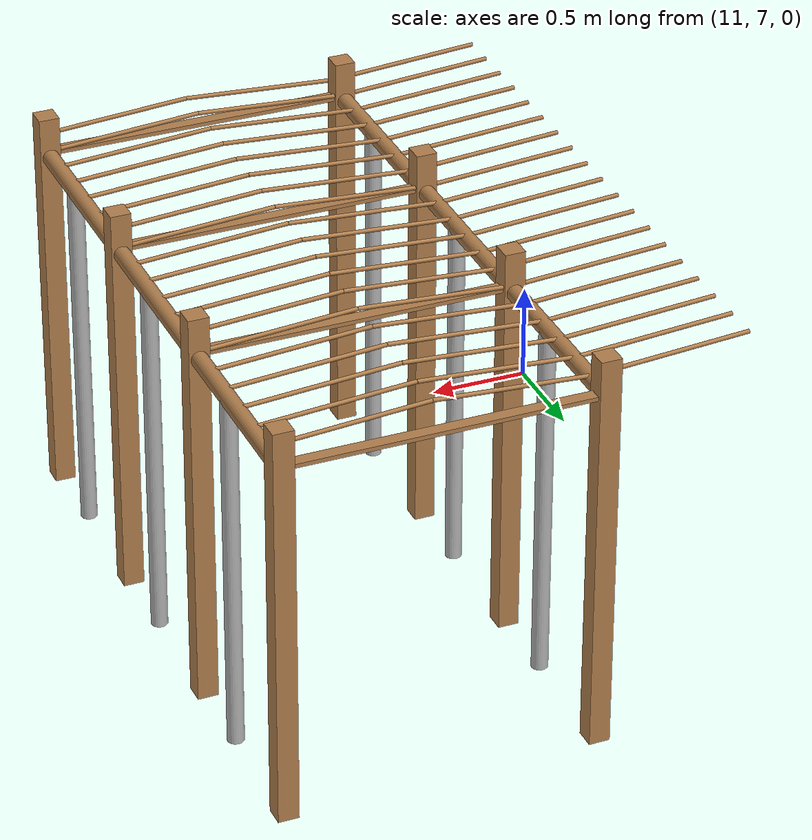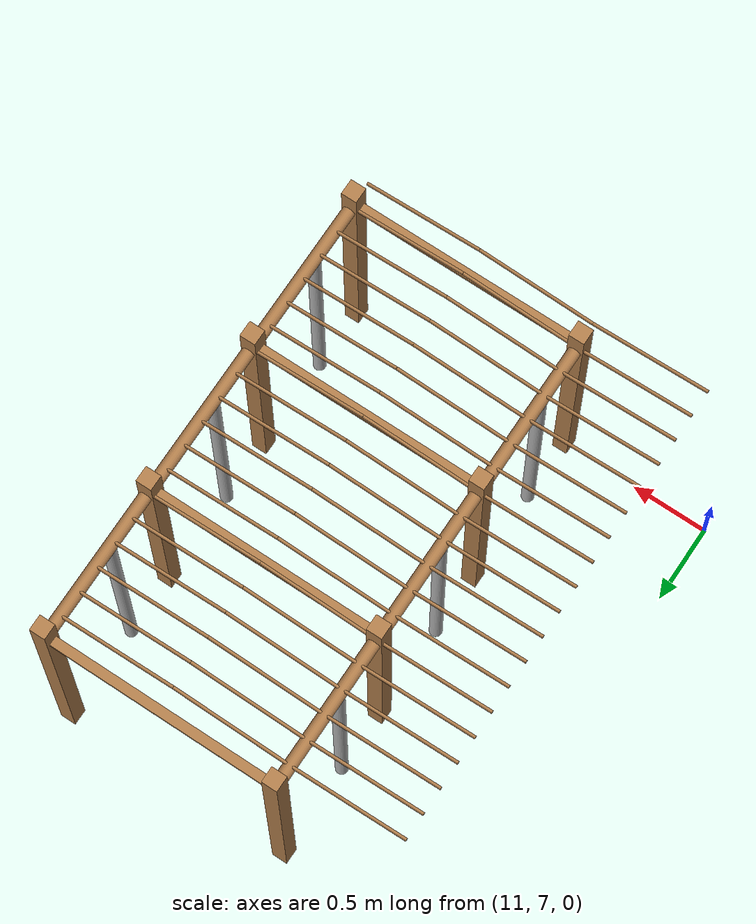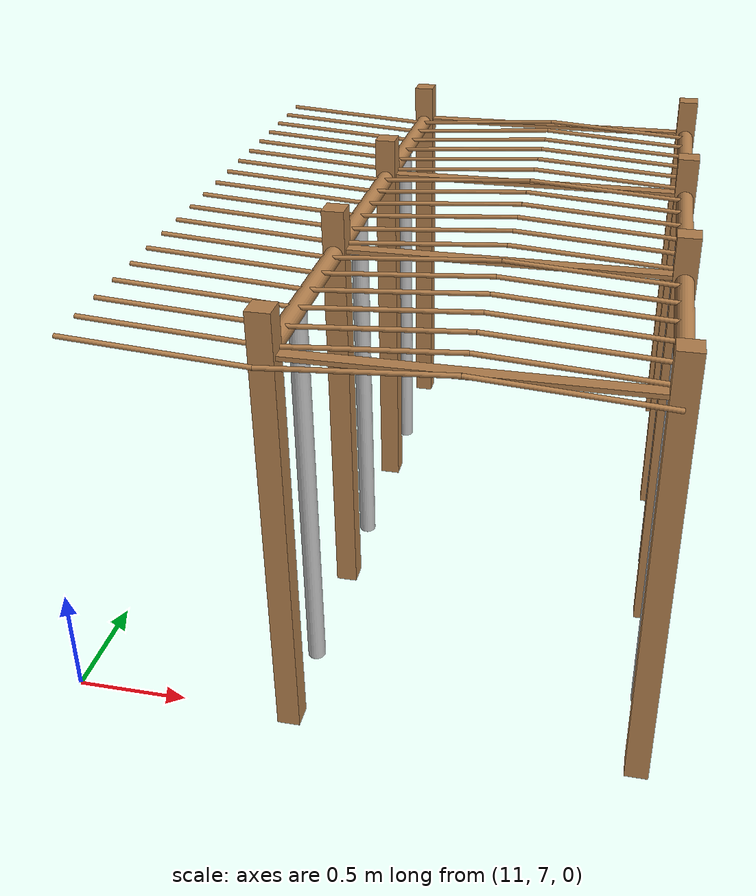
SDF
<sdf version="1.4">
 <model name="pergola">
  <include><name>post_95</name><pose>12.0 7.0 0 0 0 0</pose><uri>model://post</uri></include>
  <include><name>post_96</name><pose>12.0 8.0 0 0 0 0</pose><uri>model://post</uri></include>
  <include><name>post_97</name><pose>12.0 9.0 0 0 0 0</pose><uri>model://post</uri></include>
  <include><name>post_98</name><pose>12.0 10.0 0 0 0 0</pose><uri>model://post</uri></include>
  <include><name>post_106</name><pose>13.5 7.0 0 0 0 0</pose><uri>model://post</uri></include>
  <include><name>post_107</name><pose>13.5 8.0 0 0 0 0</pose><uri>model://post</uri></include>
  <include><name>post_108</name><pose>13.5 9.0 0 0 0 0</pose><uri>model://post</uri></include>
  <include><name>post_109</name><pose>13.5 10.0 0 0 0 0</pose><uri>model://post</uri></include>
  <link name="beam_95">
   <pose>12.75 7.0 1.81 0 0 0</pose>
   <collision name="collision"><geometry><box><size>1.5 0.06 0.02</size></box></geometry></collision>
   <visual name="visual">
    <geometry><box><size>1.5 0.06 0.02</size></box></geometry>
    <material><script><name>Gazebo/Wood</name></script></material>
   </visual>
   <inertial>
    <mass>5</mass>
    <inertia>
     <ixx>0.0016666666666666668</ixx>
     <ixy>0.0</ixy>
     <ixz>0.0</ixz>
     <iyy>0.9390000000000001</iyy>
     <iyz>0.0</iyz>
     <izz>0.9376666666666665</izz>
    </inertia>
   </inertial>
  </link>
  <link name="beam_96">
   <pose>12.75 8.0 1.81 0 0 0</pose>
   <collision name="collision"><geometry><box><size>1.5 0.06 0.02</size></box></geometry></collision>
   <visual name="visual">
    <geometry><box><size>1.5 0.06 0.02</size></box></geometry>
    <material><script><name>Gazebo/Wood</name></script></material>
   </visual>
   <inertial>
    <mass>5</mass>
    <inertia>
     <ixx>0.0016666666666666668</ixx>
     <ixy>0.0</ixy>
     <ixz>0.0</ixz>
     <iyy>0.9390000000000001</iyy>
     <iyz>0.0</iyz>
     <izz>0.9376666666666665</izz>
    </inertia>
   </inertial>
  </link>
  <link name="beam_97">
   <pose>12.75 9.0 1.81 0 0 0</pose>
   <collision name="collision"><geometry><box><size>1.5 0.06 0.02</size></box></geometry></collision>
   <visual name="visual">
    <geometry><box><size>1.5 0.06 0.02</size></box></geometry>
    <material><script><name>Gazebo/Wood</name></script></material>
   </visual>
   <inertial>
    <mass>5</mass>
    <inertia>
     <ixx>0.0016666666666666668</ixx>
     <ixy>0.0</ixy>
     <ixz>0.0</ixz>
     <iyy>0.9390000000000001</iyy>
     <iyz>0.0</iyz>
     <izz>0.9376666666666665</izz>
    </inertia>
   </inertial>
  </link>
  <link name="beam_98">
   <pose>12.75 10.0 1.81 0 0 0</pose>
   <collision name="collision"><geometry><box><size>1.5 0.06 0.02</size></box></geometry></collision>
   <visual name="visual">
    <geometry><box><size>1.5 0.06 0.02</size></box></geometry>
    <material><script><name>Gazebo/Wood</name></script></material>
   </visual>
   <inertial>
    <mass>5</mass>
    <inertia>
     <ixx>0.0016666666666666668</ixx>
     <ixy>0.0</ixy>
     <ixz>0.0</ixz>
     <iyy>0.9390000000000001</iyy>
     <iyz>0.0</iyz>
     <izz>0.9376666666666665</izz>
    </inertia>
   </inertial>
  </link>
  <include><name>tree_87</name><pose>12.0 7.4 0 0 0 0</pose><uri>model://tree_trunk</uri></include>
  <include><name>tree_88</name><pose>12.0 8.4 0 0 0 0</pose><uri>model://tree_trunk</uri></include>
  <include><name>tree_89</name><pose>12.0 9.4 0 0 0 0</pose><uri>model://tree_trunk</uri></include>
  <include><name>tree_97</name><pose>13.5 7.4 0 0 0 0</pose><uri>model://tree_trunk</uri></include>
  <include><name>tree_98</name><pose>13.5 8.4 0 0 0 0</pose><uri>model://tree_trunk</uri></include>
  <include><name>tree_99</name><pose>13.5 9.4 0 0 0 0</pose><uri>model://tree_trunk</uri></include>
  <link name="baseBranch_87">
   <pose>12.0 7.5 1.8 1.5707963267948966 0 0</pose>
   <collision name="collision">
    <geometry><cylinder><radius>0.04</radius><length>0.94</length></cylinder></geometry>
   </collision>
   <visual name="visual">
    <geometry><cylinder><radius>0.04</radius><length>0.94</length></cylinder></geometry>
    <material><script><name>Gazebo/WoodFloor</name></script></material>
   </visual>
   <inertial>
    <mass>10</mass>
    <inertia>
     <ixx>0.7403333333333334</ixx>
     <ixy>0.0</ixy>
     <ixz>0.0</ixz>
     <iyy>0.7403333333333334</iyy>
     <iyz>0.0</iyz>
     <izz>0.008</izz>
    </inertia>
   </inertial>
  </link>
  <link name="baseBranch_88">
   <pose>12.0 8.5 1.8 1.5707963267948966 0 0</pose>
   <collision name="collision">
    <geometry><cylinder><radius>0.04</radius><length>0.94</length></cylinder></geometry>
   </collision>
   <visual name="visual">
    <geometry><cylinder><radius>0.04</radius><length>0.94</length></cylinder></geometry>
    <material><script><name>Gazebo/WoodFloor</name></script></material>
   </visual>
   <inertial>
    <mass>10</mass>
    <inertia>
     <ixx>0.7403333333333334</ixx>
     <ixy>0.0</ixy>
     <ixz>0.0</ixz>
     <iyy>0.7403333333333334</iyy>
     <iyz>0.0</iyz>
     <izz>0.008</izz>
    </inertia>
   </inertial>
  </link>
  <link name="baseBranch_89">
   <pose>12.0 9.5 1.8 1.5707963267948966 0 0</pose>
   <collision name="collision">
    <geometry><cylinder><radius>0.04</radius><length>0.94</length></cylinder></geometry>
   </collision>
   <visual name="visual">
    <geometry><cylinder><radius>0.04</radius><length>0.94</length></cylinder></geometry>
    <material><script><name>Gazebo/WoodFloor</name></script></material>
   </visual>
   <inertial>
    <mass>10</mass>
    <inertia>
     <ixx>0.7403333333333334</ixx>
     <ixy>0.0</ixy>
     <ixz>0.0</ixz>
     <iyy>0.7403333333333334</iyy>
     <iyz>0.0</iyz>
     <izz>0.008</izz>
    </inertia>
   </inertial>
  </link>
  <link name="baseBranch_97">
   <pose>13.5 7.5 1.8 1.5707963267948966 0 0</pose>
   <collision name="collision">
    <geometry><cylinder><radius>0.04</radius><length>0.94</length></cylinder></geometry>
   </collision>
   <visual name="visual">
    <geometry><cylinder><radius>0.04</radius><length>0.94</length></cylinder></geometry>
    <material><script><name>Gazebo/WoodFloor</name></script></material>
   </visual>
   <inertial>
    <mass>10</mass>
    <inertia>
     <ixx>0.7403333333333334</ixx>
     <ixy>0.0</ixy>
     <ixz>0.0</ixz>
     <iyy>0.7403333333333334</iyy>
     <iyz>0.0</iyz>
     <izz>0.008</izz>
    </inertia>
   </inertial>
  </link>
  <link name="baseBranch_98">
   <pose>13.5 8.5 1.8 1.5707963267948966 0 0</pose>
   <collision name="collision">
    <geometry><cylinder><radius>0.04</radius><length>0.94</length></cylinder></geometry>
   </collision>
   <visual name="visual">
    <geometry><cylinder><radius>0.04</radius><length>0.94</length></cylinder></geometry>
    <material><script><name>Gazebo/WoodFloor</name></script></material>
   </visual>
   <inertial>
    <mass>10</mass>
    <inertia>
     <ixx>0.7403333333333334</ixx>
     <ixy>0.0</ixy>
     <ixz>0.0</ixz>
     <iyy>0.7403333333333334</iyy>
     <iyz>0.0</iyz>
     <izz>0.008</izz>
    </inertia>
   </inertial>
  </link>
  <link name="baseBranch_99">
   <pose>13.5 9.5 1.8 1.5707963267948966 0 0</pose>
   <collision name="collision">
    <geometry><cylinder><radius>0.04</radius><length>0.94</length></cylinder></geometry>
   </collision>
   <visual name="visual">
    <geometry><cylinder><radius>0.04</radius><length>0.94</length></cylinder></geometry>
    <material><script><name>Gazebo/WoodFloor</name></script></material>
   </visual>
   <inertial>
    <mass>10</mass>
    <inertia>
     <ixx>0.7403333333333334</ixx>
     <ixy>0.0</ixy>
     <ixz>0.0</ixz>
     <iyy>0.7403333333333334</iyy>
     <iyz>0.0</iyz>
     <izz>0.008</izz>
    </inertia>
   </inertial>
  </link>
  <link name="vine_923">
   <pose>11.625 6.863333333333333 1.85 0 -1.5042281630190728 0</pose>
   <collision name="collision">
    <geometry><cylinder><radius>0.01</radius><length>0.7516648189186453</length></cylinder></geometry>
   </collision>
   <visual name="visual">
    <geometry><cylinder><radius>0.01</radius><length>0.7516648189186453</length></cylinder></geometry>
    <material><script><name>Gazebo/WoodFloor</name></script></material>
   </visual>
   <inertial>
    <mass>5</mass>
    <inertia>
     <ixx>0.23554166666666657</ixx>
     <ixy>0.0</ixy>
     <ixz>0.0</ixz>
     <iyy>0.23554166666666657</iyy>
     <iyz>0.0</iyz>
     <izz>0.00025</izz>
    </inertia>
   </inertial>
  </link>
  <link name="vine_925">
   <pose>11.625 7.03 1.85 0 -1.5042281630190728 0</pose>
   <collision name="collision">
    <geometry><cylinder><radius>0.01</radius><length>0.7516648189186453</length></cylinder></geometry>
   </collision>
   <visual name="visual">
    <geometry><cylinder><radius>0.01</radius><length>0.7516648189186453</length></cylinder></geometry>
    <material><script><name>Gazebo/WoodFloor</name></script></material>
   </visual>
   <inertial>
    <mass>5</mass>
    <inertia>
     <ixx>0.23554166666666657</ixx>
     <ixy>0.0</ixy>
     <ixz>0.0</ixz>
     <iyy>0.23554166666666657</iyy>
     <iyz>0.0</iyz>
     <izz>0.00025</izz>
    </inertia>
   </inertial>
  </link>
  <link name="vine_927">
   <pose>11.625 7.196666666666666 1.85 0 -1.5042281630190728 0</pose>
   <collision name="collision">
    <geometry><cylinder><radius>0.01</radius><length>0.7516648189186453</length></cylinder></geometry>
   </collision>
   <visual name="visual">
    <geometry><cylinder><radius>0.01</radius><length>0.7516648189186453</length></cylinder></geometry>
    <material><script><name>Gazebo/WoodFloor</name></script></material>
   </visual>
   <inertial>
    <mass>5</mass>
    <inertia>
     <ixx>0.23554166666666657</ixx>
     <ixy>0.0</ixy>
     <ixz>0.0</ixz>
     <iyy>0.23554166666666657</iyy>
     <iyz>0.0</iyz>
     <izz>0.00025</izz>
    </inertia>
   </inertial>
  </link>
  <link name="vine_929">
   <pose>11.625 7.363333333333333 1.85 0 -1.5042281630190728 0</pose>
   <collision name="collision">
    <geometry><cylinder><radius>0.01</radius><length>0.7516648189186453</length></cylinder></geometry>
   </collision>
   <visual name="visual">
    <geometry><cylinder><radius>0.01</radius><length>0.7516648189186453</length></cylinder></geometry>
    <material><script><name>Gazebo/WoodFloor</name></script></material>
   </visual>
   <inertial>
    <mass>5</mass>
    <inertia>
     <ixx>0.23554166666666657</ixx>
     <ixy>0.0</ixy>
     <ixz>0.0</ixz>
     <iyy>0.23554166666666657</iyy>
     <iyz>0.0</iyz>
     <izz>0.00025</izz>
    </inertia>
   </inertial>
  </link>
  <link name="vine_931">
   <pose>11.625 7.53 1.85 0 -1.5042281630190728 0</pose>
   <collision name="collision">
    <geometry><cylinder><radius>0.01</radius><length>0.7516648189186453</length></cylinder></geometry>
   </collision>
   <visual name="visual">
    <geometry><cylinder><radius>0.01</radius><length>0.7516648189186453</length></cylinder></geometry>
    <material><script><name>Gazebo/WoodFloor</name></script></material>
   </visual>
   <inertial>
    <mass>5</mass>
    <inertia>
     <ixx>0.23554166666666657</ixx>
     <ixy>0.0</ixy>
     <ixz>0.0</ixz>
     <iyy>0.23554166666666657</iyy>
     <iyz>0.0</iyz>
     <izz>0.00025</izz>
    </inertia>
   </inertial>
  </link>
  <link name="vine_933">
   <pose>11.625 7.696666666666666 1.85 0 -1.5042281630190728 0</pose>
   <collision name="collision">
    <geometry><cylinder><radius>0.01</radius><length>0.7516648189186453</length></cylinder></geometry>
   </collision>
   <visual name="visual">
    <geometry><cylinder><radius>0.01</radius><length>0.7516648189186453</length></cylinder></geometry>
    <material><script><name>Gazebo/WoodFloor</name></script></material>
   </visual>
   <inertial>
    <mass>5</mass>
    <inertia>
     <ixx>0.23554166666666657</ixx>
     <ixy>0.0</ixy>
     <ixz>0.0</ixz>
     <iyy>0.23554166666666657</iyy>
     <iyz>0.0</iyz>
     <izz>0.00025</izz>
    </inertia>
   </inertial>
  </link>
  <link name="vine_935">
   <pose>11.625 7.863333333333333 1.85 0 -1.5042281630190728 0</pose>
   <collision name="collision">
    <geometry><cylinder><radius>0.01</radius><length>0.7516648189186453</length></cylinder></geometry>
   </collision>
   <visual name="visual">
    <geometry><cylinder><radius>0.01</radius><length>0.7516648189186453</length></cylinder></geometry>
    <material><script><name>Gazebo/WoodFloor</name></script></material>
   </visual>
   <inertial>
    <mass>5</mass>
    <inertia>
     <ixx>0.23554166666666657</ixx>
     <ixy>0.0</ixy>
     <ixz>0.0</ixz>
     <iyy>0.23554166666666657</iyy>
     <iyz>0.0</iyz>
     <izz>0.00025</izz>
    </inertia>
   </inertial>
  </link>
  <link name="vine_937">
   <pose>11.625 8.03 1.85 0 -1.5042281630190728 0</pose>
   <collision name="collision">
    <geometry><cylinder><radius>0.01</radius><length>0.7516648189186453</length></cylinder></geometry>
   </collision>
   <visual name="visual">
    <geometry><cylinder><radius>0.01</radius><length>0.7516648189186453</length></cylinder></geometry>
    <material><script><name>Gazebo/WoodFloor</name></script></material>
   </visual>
   <inertial>
    <mass>5</mass>
    <inertia>
     <ixx>0.23554166666666657</ixx>
     <ixy>0.0</ixy>
     <ixz>0.0</ixz>
     <iyy>0.23554166666666657</iyy>
     <iyz>0.0</iyz>
     <izz>0.00025</izz>
    </inertia>
   </inertial>
  </link>
  <link name="vine_939">
   <pose>11.625 8.196666666666665 1.85 0 -1.5042281630190728 0</pose>
   <collision name="collision">
    <geometry><cylinder><radius>0.01</radius><length>0.7516648189186453</length></cylinder></geometry>
   </collision>
   <visual name="visual">
    <geometry><cylinder><radius>0.01</radius><length>0.7516648189186453</length></cylinder></geometry>
    <material><script><name>Gazebo/WoodFloor</name></script></material>
   </visual>
   <inertial>
    <mass>5</mass>
    <inertia>
     <ixx>0.23554166666666657</ixx>
     <ixy>0.0</ixy>
     <ixz>0.0</ixz>
     <iyy>0.23554166666666657</iyy>
     <iyz>0.0</iyz>
     <izz>0.00025</izz>
    </inertia>
   </inertial>
  </link>
  <link name="vine_941">
   <pose>11.625 8.363333333333332 1.85 0 -1.5042281630190728 0</pose>
   <collision name="collision">
    <geometry><cylinder><radius>0.01</radius><length>0.7516648189186453</length></cylinder></geometry>
   </collision>
   <visual name="visual">
    <geometry><cylinder><radius>0.01</radius><length>0.7516648189186453</length></cylinder></geometry>
    <material><script><name>Gazebo/WoodFloor</name></script></material>
   </visual>
   <inertial>
    <mass>5</mass>
    <inertia>
     <ixx>0.23554166666666657</ixx>
     <ixy>0.0</ixy>
     <ixz>0.0</ixz>
     <iyy>0.23554166666666657</iyy>
     <iyz>0.0</iyz>
     <izz>0.00025</izz>
    </inertia>
   </inertial>
  </link>
  <link name="vine_943">
   <pose>11.625 8.53 1.85 0 -1.5042281630190728 0</pose>
   <collision name="collision">
    <geometry><cylinder><radius>0.01</radius><length>0.7516648189186453</length></cylinder></geometry>
   </collision>
   <visual name="visual">
    <geometry><cylinder><radius>0.01</radius><length>0.7516648189186453</length></cylinder></geometry>
    <material><script><name>Gazebo/WoodFloor</name></script></material>
   </visual>
   <inertial>
    <mass>5</mass>
    <inertia>
     <ixx>0.23554166666666657</ixx>
     <ixy>0.0</ixy>
     <ixz>0.0</ixz>
     <iyy>0.23554166666666657</iyy>
     <iyz>0.0</iyz>
     <izz>0.00025</izz>
    </inertia>
   </inertial>
  </link>
  <link name="vine_945">
   <pose>11.625 8.696666666666665 1.85 0 -1.5042281630190728 0</pose>
   <collision name="collision">
    <geometry><cylinder><radius>0.01</radius><length>0.7516648189186453</length></cylinder></geometry>
   </collision>
   <visual name="visual">
    <geometry><cylinder><radius>0.01</radius><length>0.7516648189186453</length></cylinder></geometry>
    <material><script><name>Gazebo/WoodFloor</name></script></material>
   </visual>
   <inertial>
    <mass>5</mass>
    <inertia>
     <ixx>0.23554166666666657</ixx>
     <ixy>0.0</ixy>
     <ixz>0.0</ixz>
     <iyy>0.23554166666666657</iyy>
     <iyz>0.0</iyz>
     <izz>0.00025</izz>
    </inertia>
   </inertial>
  </link>
  <link name="vine_947">
   <pose>11.625 8.863333333333332 1.85 0 -1.5042281630190728 0</pose>
   <collision name="collision">
    <geometry><cylinder><radius>0.01</radius><length>0.7516648189186453</length></cylinder></geometry>
   </collision>
   <visual name="visual">
    <geometry><cylinder><radius>0.01</radius><length>0.7516648189186453</length></cylinder></geometry>
    <material><script><name>Gazebo/WoodFloor</name></script></material>
   </visual>
   <inertial>
    <mass>5</mass>
    <inertia>
     <ixx>0.23554166666666657</ixx>
     <ixy>0.0</ixy>
     <ixz>0.0</ixz>
     <iyy>0.23554166666666657</iyy>
     <iyz>0.0</iyz>
     <izz>0.00025</izz>
    </inertia>
   </inertial>
  </link>
  <link name="vine_949">
   <pose>11.625 9.03 1.85 0 -1.5042281630190728 0</pose>
   <collision name="collision">
    <geometry><cylinder><radius>0.01</radius><length>0.7516648189186453</length></cylinder></geometry>
   </collision>
   <visual name="visual">
    <geometry><cylinder><radius>0.01</radius><length>0.7516648189186453</length></cylinder></geometry>
    <material><script><name>Gazebo/WoodFloor</name></script></material>
   </visual>
   <inertial>
    <mass>5</mass>
    <inertia>
     <ixx>0.23554166666666657</ixx>
     <ixy>0.0</ixy>
     <ixz>0.0</ixz>
     <iyy>0.23554166666666657</iyy>
     <iyz>0.0</iyz>
     <izz>0.00025</izz>
    </inertia>
   </inertial>
  </link>
  <link name="vine_951">
   <pose>11.625 9.196666666666665 1.85 0 -1.5042281630190728 0</pose>
   <collision name="collision">
    <geometry><cylinder><radius>0.01</radius><length>0.7516648189186453</length></cylinder></geometry>
   </collision>
   <visual name="visual">
    <geometry><cylinder><radius>0.01</radius><length>0.7516648189186453</length></cylinder></geometry>
    <material><script><name>Gazebo/WoodFloor</name></script></material>
   </visual>
   <inertial>
    <mass>5</mass>
    <inertia>
     <ixx>0.23554166666666657</ixx>
     <ixy>0.0</ixy>
     <ixz>0.0</ixz>
     <iyy>0.23554166666666657</iyy>
     <iyz>0.0</iyz>
     <izz>0.00025</izz>
    </inertia>
   </inertial>
  </link>
  <link name="vine_953">
   <pose>11.625 9.363333333333332 1.85 0 -1.5042281630190728 0</pose>
   <collision name="collision">
    <geometry><cylinder><radius>0.01</radius><length>0.7516648189186453</length></cylinder></geometry>
   </collision>
   <visual name="visual">
    <geometry><cylinder><radius>0.01</radius><length>0.7516648189186453</length></cylinder></geometry>
    <material><script><name>Gazebo/WoodFloor</name></script></material>
   </visual>
   <inertial>
    <mass>5</mass>
    <inertia>
     <ixx>0.23554166666666657</ixx>
     <ixy>0.0</ixy>
     <ixz>0.0</ixz>
     <iyy>0.23554166666666657</iyy>
     <iyz>0.0</iyz>
     <izz>0.00025</izz>
    </inertia>
   </inertial>
  </link>
  <link name="vine_955">
   <pose>11.625 9.53 1.85 0 -1.5042281630190728 0</pose>
   <collision name="collision">
    <geometry><cylinder><radius>0.01</radius><length>0.7516648189186453</length></cylinder></geometry>
   </collision>
   <visual name="visual">
    <geometry><cylinder><radius>0.01</radius><length>0.7516648189186453</length></cylinder></geometry>
    <material><script><name>Gazebo/WoodFloor</name></script></material>
   </visual>
   <inertial>
    <mass>5</mass>
    <inertia>
     <ixx>0.23554166666666657</ixx>
     <ixy>0.0</ixy>
     <ixz>0.0</ixz>
     <iyy>0.23554166666666657</iyy>
     <iyz>0.0</iyz>
     <izz>0.00025</izz>
    </inertia>
   </inertial>
  </link>
  <link name="vine_957">
   <pose>11.625 9.696666666666665 1.85 0 -1.5042281630190728 0</pose>
   <collision name="collision">
    <geometry><cylinder><radius>0.01</radius><length>0.7516648189186453</length></cylinder></geometry>
   </collision>
   <visual name="visual">
    <geometry><cylinder><radius>0.01</radius><length>0.7516648189186453</length></cylinder></geometry>
    <material><script><name>Gazebo/WoodFloor</name></script></material>
   </visual>
   <inertial>
    <mass>5</mass>
    <inertia>
     <ixx>0.23554166666666657</ixx>
     <ixy>0.0</ixy>
     <ixz>0.0</ixz>
     <iyy>0.23554166666666657</iyy>
     <iyz>0.0</iyz>
     <izz>0.00025</izz>
    </inertia>
   </inertial>
  </link>
  <link name="vine_959">
   <pose>11.625 9.863333333333332 1.85 0 -1.5042281630190728 0</pose>
   <collision name="collision">
    <geometry><cylinder><radius>0.01</radius><length>0.7516648189186453</length></cylinder></geometry>
   </collision>
   <visual name="visual">
    <geometry><cylinder><radius>0.01</radius><length>0.7516648189186453</length></cylinder></geometry>
    <material><script><name>Gazebo/WoodFloor</name></script></material>
   </visual>
   <inertial>
    <mass>5</mass>
    <inertia>
     <ixx>0.23554166666666657</ixx>
     <ixy>0.0</ixy>
     <ixz>0.0</ixz>
     <iyy>0.23554166666666657</iyy>
     <iyz>0.0</iyz>
     <izz>0.00025</izz>
    </inertia>
   </inertial>
  </link>
  <link name="vine_1042">
   <pose>12.375 6.863333333333333 1.85 0 1.5042281630190728 0</pose>
   <collision name="collision">
    <geometry><cylinder><radius>0.01</radius><length>0.7516648189186453</length></cylinder></geometry>
   </collision>
   <visual name="visual">
    <geometry><cylinder><radius>0.01</radius><length>0.7516648189186453</length></cylinder></geometry>
    <material><script><name>Gazebo/WoodFloor</name></script></material>
   </visual>
   <inertial>
    <mass>5</mass>
    <inertia>
     <ixx>0.23554166666666657</ixx>
     <ixy>0.0</ixy>
     <ixz>0.0</ixz>
     <iyy>0.23554166666666657</iyy>
     <iyz>0.0</iyz>
     <izz>0.00025</izz>
    </inertia>
   </inertial>
  </link>
  <link name="vine_1043">
   <pose>13.125 6.863333333333333 1.85 0 -1.5042281630190728 0</pose>
   <collision name="collision">
    <geometry><cylinder><radius>0.01</radius><length>0.7516648189186453</length></cylinder></geometry>
   </collision>
   <visual name="visual">
    <geometry><cylinder><radius>0.01</radius><length>0.7516648189186453</length></cylinder></geometry>
    <material><script><name>Gazebo/WoodFloor</name></script></material>
   </visual>
   <inertial>
    <mass>5</mass>
    <inertia>
     <ixx>0.23554166666666657</ixx>
     <ixy>0.0</ixy>
     <ixz>0.0</ixz>
     <iyy>0.23554166666666657</iyy>
     <iyz>0.0</iyz>
     <izz>0.00025</izz>
    </inertia>
   </inertial>
  </link>
  <link name="vine_1044">
   <pose>12.375 7.03 1.85 0 1.5042281630190728 0</pose>
   <collision name="collision">
    <geometry><cylinder><radius>0.01</radius><length>0.7516648189186453</length></cylinder></geometry>
   </collision>
   <visual name="visual">
    <geometry><cylinder><radius>0.01</radius><length>0.7516648189186453</length></cylinder></geometry>
    <material><script><name>Gazebo/WoodFloor</name></script></material>
   </visual>
   <inertial>
    <mass>5</mass>
    <inertia>
     <ixx>0.23554166666666657</ixx>
     <ixy>0.0</ixy>
     <ixz>0.0</ixz>
     <iyy>0.23554166666666657</iyy>
     <iyz>0.0</iyz>
     <izz>0.00025</izz>
    </inertia>
   </inertial>
  </link>
  <link name="vine_1045">
   <pose>13.125 7.03 1.85 0 -1.5042281630190728 0</pose>
   <collision name="collision">
    <geometry><cylinder><radius>0.01</radius><length>0.7516648189186453</length></cylinder></geometry>
   </collision>
   <visual name="visual">
    <geometry><cylinder><radius>0.01</radius><length>0.7516648189186453</length></cylinder></geometry>
    <material><script><name>Gazebo/WoodFloor</name></script></material>
   </visual>
   <inertial>
    <mass>5</mass>
    <inertia>
     <ixx>0.23554166666666657</ixx>
     <ixy>0.0</ixy>
     <ixz>0.0</ixz>
     <iyy>0.23554166666666657</iyy>
     <iyz>0.0</iyz>
     <izz>0.00025</izz>
    </inertia>
   </inertial>
  </link>
  <link name="vine_1046">
   <pose>12.375 7.196666666666666 1.85 0 1.5042281630190728 0</pose>
   <collision name="collision">
    <geometry><cylinder><radius>0.01</radius><length>0.7516648189186453</length></cylinder></geometry>
   </collision>
   <visual name="visual">
    <geometry><cylinder><radius>0.01</radius><length>0.7516648189186453</length></cylinder></geometry>
    <material><script><name>Gazebo/WoodFloor</name></script></material>
   </visual>
   <inertial>
    <mass>5</mass>
    <inertia>
     <ixx>0.23554166666666657</ixx>
     <ixy>0.0</ixy>
     <ixz>0.0</ixz>
     <iyy>0.23554166666666657</iyy>
     <iyz>0.0</iyz>
     <izz>0.00025</izz>
    </inertia>
   </inertial>
  </link>
  <link name="vine_1047">
   <pose>13.125 7.196666666666666 1.85 0 -1.5042281630190728 0</pose>
   <collision name="collision">
    <geometry><cylinder><radius>0.01</radius><length>0.7516648189186453</length></cylinder></geometry>
   </collision>
   <visual name="visual">
    <geometry><cylinder><radius>0.01</radius><length>0.7516648189186453</length></cylinder></geometry>
    <material><script><name>Gazebo/WoodFloor</name></script></material>
   </visual>
   <inertial>
    <mass>5</mass>
    <inertia>
     <ixx>0.23554166666666657</ixx>
     <ixy>0.0</ixy>
     <ixz>0.0</ixz>
     <iyy>0.23554166666666657</iyy>
     <iyz>0.0</iyz>
     <izz>0.00025</izz>
    </inertia>
   </inertial>
  </link>
  <link name="vine_1048">
   <pose>12.375 7.363333333333333 1.85 0 1.5042281630190728 0</pose>
   <collision name="collision">
    <geometry><cylinder><radius>0.01</radius><length>0.7516648189186453</length></cylinder></geometry>
   </collision>
   <visual name="visual">
    <geometry><cylinder><radius>0.01</radius><length>0.7516648189186453</length></cylinder></geometry>
    <material><script><name>Gazebo/WoodFloor</name></script></material>
   </visual>
   <inertial>
    <mass>5</mass>
    <inertia>
     <ixx>0.23554166666666657</ixx>
     <ixy>0.0</ixy>
     <ixz>0.0</ixz>
     <iyy>0.23554166666666657</iyy>
     <iyz>0.0</iyz>
     <izz>0.00025</izz>
    </inertia>
   </inertial>
  </link>
  <link name="vine_1049">
   <pose>13.125 7.363333333333333 1.85 0 -1.5042281630190728 0</pose>
   <collision name="collision">
    <geometry><cylinder><radius>0.01</radius><length>0.7516648189186453</length></cylinder></geometry>
   </collision>
   <visual name="visual">
    <geometry><cylinder><radius>0.01</radius><length>0.7516648189186453</length></cylinder></geometry>
    <material><script><name>Gazebo/WoodFloor</name></script></material>
   </visual>
   <inertial>
    <mass>5</mass>
    <inertia>
     <ixx>0.23554166666666657</ixx>
     <ixy>0.0</ixy>
     <ixz>0.0</ixz>
     <iyy>0.23554166666666657</iyy>
     <iyz>0.0</iyz>
     <izz>0.00025</izz>
    </inertia>
   </inertial>
  </link>
  <link name="vine_1050">
   <pose>12.375 7.53 1.85 0 1.5042281630190728 0</pose>
   <collision name="collision">
    <geometry><cylinder><radius>0.01</radius><length>0.7516648189186453</length></cylinder></geometry>
   </collision>
   <visual name="visual">
    <geometry><cylinder><radius>0.01</radius><length>0.7516648189186453</length></cylinder></geometry>
    <material><script><name>Gazebo/WoodFloor</name></script></material>
   </visual>
   <inertial>
    <mass>5</mass>
    <inertia>
     <ixx>0.23554166666666657</ixx>
     <ixy>0.0</ixy>
     <ixz>0.0</ixz>
     <iyy>0.23554166666666657</iyy>
     <iyz>0.0</iyz>
     <izz>0.00025</izz>
    </inertia>
   </inertial>
  </link>
  <link name="vine_1051">
   <pose>13.125 7.53 1.85 0 -1.5042281630190728 0</pose>
   <collision name="collision">
    <geometry><cylinder><radius>0.01</radius><length>0.7516648189186453</length></cylinder></geometry>
   </collision>
   <visual name="visual">
    <geometry><cylinder><radius>0.01</radius><length>0.7516648189186453</length></cylinder></geometry>
    <material><script><name>Gazebo/WoodFloor</name></script></material>
   </visual>
   <inertial>
    <mass>5</mass>
    <inertia>
     <ixx>0.23554166666666657</ixx>
     <ixy>0.0</ixy>
     <ixz>0.0</ixz>
     <iyy>0.23554166666666657</iyy>
     <iyz>0.0</iyz>
     <izz>0.00025</izz>
    </inertia>
   </inertial>
  </link>
  <link name="vine_1052">
   <pose>12.375 7.696666666666666 1.85 0 1.5042281630190728 0</pose>
   <collision name="collision">
    <geometry><cylinder><radius>0.01</radius><length>0.7516648189186453</length></cylinder></geometry>
   </collision>
   <visual name="visual">
    <geometry><cylinder><radius>0.01</radius><length>0.7516648189186453</length></cylinder></geometry>
    <material><script><name>Gazebo/WoodFloor</name></script></material>
   </visual>
   <inertial>
    <mass>5</mass>
    <inertia>
     <ixx>0.23554166666666657</ixx>
     <ixy>0.0</ixy>
     <ixz>0.0</ixz>
     <iyy>0.23554166666666657</iyy>
     <iyz>0.0</iyz>
     <izz>0.00025</izz>
    </inertia>
   </inertial>
  </link>
  <link name="vine_1053">
   <pose>13.125 7.696666666666666 1.85 0 -1.5042281630190728 0</pose>
   <collision name="collision">
    <geometry><cylinder><radius>0.01</radius><length>0.7516648189186453</length></cylinder></geometry>
   </collision>
   <visual name="visual">
    <geometry><cylinder><radius>0.01</radius><length>0.7516648189186453</length></cylinder></geometry>
    <material><script><name>Gazebo/WoodFloor</name></script></material>
   </visual>
   <inertial>
    <mass>5</mass>
    <inertia>
     <ixx>0.23554166666666657</ixx>
     <ixy>0.0</ixy>
     <ixz>0.0</ixz>
     <iyy>0.23554166666666657</iyy>
     <iyz>0.0</iyz>
     <izz>0.00025</izz>
    </inertia>
   </inertial>
  </link>
  <link name="vine_1054">
   <pose>12.375 7.863333333333333 1.85 0 1.5042281630190728 0</pose>
   <collision name="collision">
    <geometry><cylinder><radius>0.01</radius><length>0.7516648189186453</length></cylinder></geometry>
   </collision>
   <visual name="visual">
    <geometry><cylinder><radius>0.01</radius><length>0.7516648189186453</length></cylinder></geometry>
    <material><script><name>Gazebo/WoodFloor</name></script></material>
   </visual>
   <inertial>
    <mass>5</mass>
    <inertia>
     <ixx>0.23554166666666657</ixx>
     <ixy>0.0</ixy>
     <ixz>0.0</ixz>
     <iyy>0.23554166666666657</iyy>
     <iyz>0.0</iyz>
     <izz>0.00025</izz>
    </inertia>
   </inertial>
  </link>
  <link name="vine_1055">
   <pose>13.125 7.863333333333333 1.85 0 -1.5042281630190728 0</pose>
   <collision name="collision">
    <geometry><cylinder><radius>0.01</radius><length>0.7516648189186453</length></cylinder></geometry>
   </collision>
   <visual name="visual">
    <geometry><cylinder><radius>0.01</radius><length>0.7516648189186453</length></cylinder></geometry>
    <material><script><name>Gazebo/WoodFloor</name></script></material>
   </visual>
   <inertial>
    <mass>5</mass>
    <inertia>
     <ixx>0.23554166666666657</ixx>
     <ixy>0.0</ixy>
     <ixz>0.0</ixz>
     <iyy>0.23554166666666657</iyy>
     <iyz>0.0</iyz>
     <izz>0.00025</izz>
    </inertia>
   </inertial>
  </link>
  <link name="vine_1056">
   <pose>12.375 8.03 1.85 0 1.5042281630190728 0</pose>
   <collision name="collision">
    <geometry><cylinder><radius>0.01</radius><length>0.7516648189186453</length></cylinder></geometry>
   </collision>
   <visual name="visual">
    <geometry><cylinder><radius>0.01</radius><length>0.7516648189186453</length></cylinder></geometry>
    <material><script><name>Gazebo/WoodFloor</name></script></material>
   </visual>
   <inertial>
    <mass>5</mass>
    <inertia>
     <ixx>0.23554166666666657</ixx>
     <ixy>0.0</ixy>
     <ixz>0.0</ixz>
     <iyy>0.23554166666666657</iyy>
     <iyz>0.0</iyz>
     <izz>0.00025</izz>
    </inertia>
   </inertial>
  </link>
  <link name="vine_1057">
   <pose>13.125 8.03 1.85 0 -1.5042281630190728 0</pose>
   <collision name="collision">
    <geometry><cylinder><radius>0.01</radius><length>0.7516648189186453</length></cylinder></geometry>
   </collision>
   <visual name="visual">
    <geometry><cylinder><radius>0.01</radius><length>0.7516648189186453</length></cylinder></geometry>
    <material><script><name>Gazebo/WoodFloor</name></script></material>
   </visual>
   <inertial>
    <mass>5</mass>
    <inertia>
     <ixx>0.23554166666666657</ixx>
     <ixy>0.0</ixy>
     <ixz>0.0</ixz>
     <iyy>0.23554166666666657</iyy>
     <iyz>0.0</iyz>
     <izz>0.00025</izz>
    </inertia>
   </inertial>
  </link>
  <link name="vine_1058">
   <pose>12.375 8.196666666666665 1.85 0 1.5042281630190728 0</pose>
   <collision name="collision">
    <geometry><cylinder><radius>0.01</radius><length>0.7516648189186453</length></cylinder></geometry>
   </collision>
   <visual name="visual">
    <geometry><cylinder><radius>0.01</radius><length>0.7516648189186453</length></cylinder></geometry>
    <material><script><name>Gazebo/WoodFloor</name></script></material>
   </visual>
   <inertial>
    <mass>5</mass>
    <inertia>
     <ixx>0.23554166666666657</ixx>
     <ixy>0.0</ixy>
     <ixz>0.0</ixz>
     <iyy>0.23554166666666657</iyy>
     <iyz>0.0</iyz>
     <izz>0.00025</izz>
    </inertia>
   </inertial>
  </link>
  <link name="vine_1059">
   <pose>13.125 8.196666666666665 1.85 0 -1.5042281630190728 0</pose>
   <collision name="collision">
    <geometry><cylinder><radius>0.01</radius><length>0.7516648189186453</length></cylinder></geometry>
   </collision>
   <visual name="visual">
    <geometry><cylinder><radius>0.01</radius><length>0.7516648189186453</length></cylinder></geometry>
    <material><script><name>Gazebo/WoodFloor</name></script></material>
   </visual>
   <inertial>
    <mass>5</mass>
    <inertia>
     <ixx>0.23554166666666657</ixx>
     <ixy>0.0</ixy>
     <ixz>0.0</ixz>
     <iyy>0.23554166666666657</iyy>
     <iyz>0.0</iyz>
     <izz>0.00025</izz>
    </inertia>
   </inertial>
  </link>
  <link name="vine_1060">
   <pose>12.375 8.363333333333332 1.85 0 1.5042281630190728 0</pose>
   <collision name="collision">
    <geometry><cylinder><radius>0.01</radius><length>0.7516648189186453</length></cylinder></geometry>
   </collision>
   <visual name="visual">
    <geometry><cylinder><radius>0.01</radius><length>0.7516648189186453</length></cylinder></geometry>
    <material><script><name>Gazebo/WoodFloor</name></script></material>
   </visual>
   <inertial>
    <mass>5</mass>
    <inertia>
     <ixx>0.23554166666666657</ixx>
     <ixy>0.0</ixy>
     <ixz>0.0</ixz>
     <iyy>0.23554166666666657</iyy>
     <iyz>0.0</iyz>
     <izz>0.00025</izz>
    </inertia>
   </inertial>
  </link>
  <link name="vine_1061">
   <pose>13.125 8.363333333333332 1.85 0 -1.5042281630190728 0</pose>
   <collision name="collision">
    <geometry><cylinder><radius>0.01</radius><length>0.7516648189186453</length></cylinder></geometry>
   </collision>
   <visual name="visual">
    <geometry><cylinder><radius>0.01</radius><length>0.7516648189186453</length></cylinder></geometry>
    <material><script><name>Gazebo/WoodFloor</name></script></material>
   </visual>
   <inertial>
    <mass>5</mass>
    <inertia>
     <ixx>0.23554166666666657</ixx>
     <ixy>0.0</ixy>
     <ixz>0.0</ixz>
     <iyy>0.23554166666666657</iyy>
     <iyz>0.0</iyz>
     <izz>0.00025</izz>
    </inertia>
   </inertial>
  </link>
  <link name="vine_1062">
   <pose>12.375 8.53 1.85 0 1.5042281630190728 0</pose>
   <collision name="collision">
    <geometry><cylinder><radius>0.01</radius><length>0.7516648189186453</length></cylinder></geometry>
   </collision>
   <visual name="visual">
    <geometry><cylinder><radius>0.01</radius><length>0.7516648189186453</length></cylinder></geometry>
    <material><script><name>Gazebo/WoodFloor</name></script></material>
   </visual>
   <inertial>
    <mass>5</mass>
    <inertia>
     <ixx>0.23554166666666657</ixx>
     <ixy>0.0</ixy>
     <ixz>0.0</ixz>
     <iyy>0.23554166666666657</iyy>
     <iyz>0.0</iyz>
     <izz>0.00025</izz>
    </inertia>
   </inertial>
  </link>
  <link name="vine_1063">
   <pose>13.125 8.53 1.85 0 -1.5042281630190728 0</pose>
   <collision name="collision">
    <geometry><cylinder><radius>0.01</radius><length>0.7516648189186453</length></cylinder></geometry>
   </collision>
   <visual name="visual">
    <geometry><cylinder><radius>0.01</radius><length>0.7516648189186453</length></cylinder></geometry>
    <material><script><name>Gazebo/WoodFloor</name></script></material>
   </visual>
   <inertial>
    <mass>5</mass>
    <inertia>
     <ixx>0.23554166666666657</ixx>
     <ixy>0.0</ixy>
     <ixz>0.0</ixz>
     <iyy>0.23554166666666657</iyy>
     <iyz>0.0</iyz>
     <izz>0.00025</izz>
    </inertia>
   </inertial>
  </link>
  <link name="vine_1064">
   <pose>12.375 8.696666666666665 1.85 0 1.5042281630190728 0</pose>
   <collision name="collision">
    <geometry><cylinder><radius>0.01</radius><length>0.7516648189186453</length></cylinder></geometry>
   </collision>
   <visual name="visual">
    <geometry><cylinder><radius>0.01</radius><length>0.7516648189186453</length></cylinder></geometry>
    <material><script><name>Gazebo/WoodFloor</name></script></material>
   </visual>
   <inertial>
    <mass>5</mass>
    <inertia>
     <ixx>0.23554166666666657</ixx>
     <ixy>0.0</ixy>
     <ixz>0.0</ixz>
     <iyy>0.23554166666666657</iyy>
     <iyz>0.0</iyz>
     <izz>0.00025</izz>
    </inertia>
   </inertial>
  </link>
  <link name="vine_1065">
   <pose>13.125 8.696666666666665 1.85 0 -1.5042281630190728 0</pose>
   <collision name="collision">
    <geometry><cylinder><radius>0.01</radius><length>0.7516648189186453</length></cylinder></geometry>
   </collision>
   <visual name="visual">
    <geometry><cylinder><radius>0.01</radius><length>0.7516648189186453</length></cylinder></geometry>
    <material><script><name>Gazebo/WoodFloor</name></script></material>
   </visual>
   <inertial>
    <mass>5</mass>
    <inertia>
     <ixx>0.23554166666666657</ixx>
     <ixy>0.0</ixy>
     <ixz>0.0</ixz>
     <iyy>0.23554166666666657</iyy>
     <iyz>0.0</iyz>
     <izz>0.00025</izz>
    </inertia>
   </inertial>
  </link>
  <link name="vine_1066">
   <pose>12.375 8.863333333333332 1.85 0 1.5042281630190728 0</pose>
   <collision name="collision">
    <geometry><cylinder><radius>0.01</radius><length>0.7516648189186453</length></cylinder></geometry>
   </collision>
   <visual name="visual">
    <geometry><cylinder><radius>0.01</radius><length>0.7516648189186453</length></cylinder></geometry>
    <material><script><name>Gazebo/WoodFloor</name></script></material>
   </visual>
   <inertial>
    <mass>5</mass>
    <inertia>
     <ixx>0.23554166666666657</ixx>
     <ixy>0.0</ixy>
     <ixz>0.0</ixz>
     <iyy>0.23554166666666657</iyy>
     <iyz>0.0</iyz>
     <izz>0.00025</izz>
    </inertia>
   </inertial>
  </link>
  <link name="vine_1067">
   <pose>13.125 8.863333333333332 1.85 0 -1.5042281630190728 0</pose>
   <collision name="collision">
    <geometry><cylinder><radius>0.01</radius><length>0.7516648189186453</length></cylinder></geometry>
   </collision>
   <visual name="visual">
    <geometry><cylinder><radius>0.01</radius><length>0.7516648189186453</length></cylinder></geometry>
    <material><script><name>Gazebo/WoodFloor</name></script></material>
   </visual>
   <inertial>
    <mass>5</mass>
    <inertia>
     <ixx>0.23554166666666657</ixx>
     <ixy>0.0</ixy>
     <ixz>0.0</ixz>
     <iyy>0.23554166666666657</iyy>
     <iyz>0.0</iyz>
     <izz>0.00025</izz>
    </inertia>
   </inertial>
  </link>
  <link name="vine_1068">
   <pose>12.375 9.03 1.85 0 1.5042281630190728 0</pose>
   <collision name="collision">
    <geometry><cylinder><radius>0.01</radius><length>0.7516648189186453</length></cylinder></geometry>
   </collision>
   <visual name="visual">
    <geometry><cylinder><radius>0.01</radius><length>0.7516648189186453</length></cylinder></geometry>
    <material><script><name>Gazebo/WoodFloor</name></script></material>
   </visual>
   <inertial>
    <mass>5</mass>
    <inertia>
     <ixx>0.23554166666666657</ixx>
     <ixy>0.0</ixy>
     <ixz>0.0</ixz>
     <iyy>0.23554166666666657</iyy>
     <iyz>0.0</iyz>
     <izz>0.00025</izz>
    </inertia>
   </inertial>
  </link>
  <link name="vine_1069">
   <pose>13.125 9.03 1.85 0 -1.5042281630190728 0</pose>
   <collision name="collision">
    <geometry><cylinder><radius>0.01</radius><length>0.7516648189186453</length></cylinder></geometry>
   </collision>
   <visual name="visual">
    <geometry><cylinder><radius>0.01</radius><length>0.7516648189186453</length></cylinder></geometry>
    <material><script><name>Gazebo/WoodFloor</name></script></material>
   </visual>
   <inertial>
    <mass>5</mass>
    <inertia>
     <ixx>0.23554166666666657</ixx>
     <ixy>0.0</ixy>
     <ixz>0.0</ixz>
     <iyy>0.23554166666666657</iyy>
     <iyz>0.0</iyz>
     <izz>0.00025</izz>
    </inertia>
   </inertial>
  </link>
  <link name="vine_1070">
   <pose>12.375 9.196666666666665 1.85 0 1.5042281630190728 0</pose>
   <collision name="collision">
    <geometry><cylinder><radius>0.01</radius><length>0.7516648189186453</length></cylinder></geometry>
   </collision>
   <visual name="visual">
    <geometry><cylinder><radius>0.01</radius><length>0.7516648189186453</length></cylinder></geometry>
    <material><script><name>Gazebo/WoodFloor</name></script></material>
   </visual>
   <inertial>
    <mass>5</mass>
    <inertia>
     <ixx>0.23554166666666657</ixx>
     <ixy>0.0</ixy>
     <ixz>0.0</ixz>
     <iyy>0.23554166666666657</iyy>
     <iyz>0.0</iyz>
     <izz>0.00025</izz>
    </inertia>
   </inertial>
  </link>
  <link name="vine_1071">
   <pose>13.125 9.196666666666665 1.85 0 -1.5042281630190728 0</pose>
   <collision name="collision">
    <geometry><cylinder><radius>0.01</radius><length>0.7516648189186453</length></cylinder></geometry>
   </collision>
   <visual name="visual">
    <geometry><cylinder><radius>0.01</radius><length>0.7516648189186453</length></cylinder></geometry>
    <material><script><name>Gazebo/WoodFloor</name></script></material>
   </visual>
   <inertial>
    <mass>5</mass>
    <inertia>
     <ixx>0.23554166666666657</ixx>
     <ixy>0.0</ixy>
     <ixz>0.0</ixz>
     <iyy>0.23554166666666657</iyy>
     <iyz>0.0</iyz>
     <izz>0.00025</izz>
    </inertia>
   </inertial>
  </link>
  <link name="vine_1072">
   <pose>12.375 9.363333333333332 1.85 0 1.5042281630190728 0</pose>
   <collision name="collision">
    <geometry><cylinder><radius>0.01</radius><length>0.7516648189186453</length></cylinder></geometry>
   </collision>
   <visual name="visual">
    <geometry><cylinder><radius>0.01</radius><length>0.7516648189186453</length></cylinder></geometry>
    <material><script><name>Gazebo/WoodFloor</name></script></material>
   </visual>
   <inertial>
    <mass>5</mass>
    <inertia>
     <ixx>0.23554166666666657</ixx>
     <ixy>0.0</ixy>
     <ixz>0.0</ixz>
     <iyy>0.23554166666666657</iyy>
     <iyz>0.0</iyz>
     <izz>0.00025</izz>
    </inertia>
   </inertial>
  </link>
  <link name="vine_1073">
   <pose>13.125 9.363333333333332 1.85 0 -1.5042281630190728 0</pose>
   <collision name="collision">
    <geometry><cylinder><radius>0.01</radius><length>0.7516648189186453</length></cylinder></geometry>
   </collision>
   <visual name="visual">
    <geometry><cylinder><radius>0.01</radius><length>0.7516648189186453</length></cylinder></geometry>
    <material><script><name>Gazebo/WoodFloor</name></script></material>
   </visual>
   <inertial>
    <mass>5</mass>
    <inertia>
     <ixx>0.23554166666666657</ixx>
     <ixy>0.0</ixy>
     <ixz>0.0</ixz>
     <iyy>0.23554166666666657</iyy>
     <iyz>0.0</iyz>
     <izz>0.00025</izz>
    </inertia>
   </inertial>
  </link>
  <link name="vine_1074">
   <pose>12.375 9.53 1.85 0 1.5042281630190728 0</pose>
   <collision name="collision">
    <geometry><cylinder><radius>0.01</radius><length>0.7516648189186453</length></cylinder></geometry>
   </collision>
   <visual name="visual">
    <geometry><cylinder><radius>0.01</radius><length>0.7516648189186453</length></cylinder></geometry>
    <material><script><name>Gazebo/WoodFloor</name></script></material>
   </visual>
   <inertial>
    <mass>5</mass>
    <inertia>
     <ixx>0.23554166666666657</ixx>
     <ixy>0.0</ixy>
     <ixz>0.0</ixz>
     <iyy>0.23554166666666657</iyy>
     <iyz>0.0</iyz>
     <izz>0.00025</izz>
    </inertia>
   </inertial>
  </link>
  <link name="vine_1075">
   <pose>13.125 9.53 1.85 0 -1.5042281630190728 0</pose>
   <collision name="collision">
    <geometry><cylinder><radius>0.01</radius><length>0.7516648189186453</length></cylinder></geometry>
   </collision>
   <visual name="visual">
    <geometry><cylinder><radius>0.01</radius><length>0.7516648189186453</length></cylinder></geometry>
    <material><script><name>Gazebo/WoodFloor</name></script></material>
   </visual>
   <inertial>
    <mass>5</mass>
    <inertia>
     <ixx>0.23554166666666657</ixx>
     <ixy>0.0</ixy>
     <ixz>0.0</ixz>
     <iyy>0.23554166666666657</iyy>
     <iyz>0.0</iyz>
     <izz>0.00025</izz>
    </inertia>
   </inertial>
  </link>
  <link name="vine_1076">
   <pose>12.375 9.696666666666665 1.85 0 1.5042281630190728 0</pose>
   <collision name="collision">
    <geometry><cylinder><radius>0.01</radius><length>0.7516648189186453</length></cylinder></geometry>
   </collision>
   <visual name="visual">
    <geometry><cylinder><radius>0.01</radius><length>0.7516648189186453</length></cylinder></geometry>
    <material><script><name>Gazebo/WoodFloor</name></script></material>
   </visual>
   <inertial>
    <mass>5</mass>
    <inertia>
     <ixx>0.23554166666666657</ixx>
     <ixy>0.0</ixy>
     <ixz>0.0</ixz>
     <iyy>0.23554166666666657</iyy>
     <iyz>0.0</iyz>
     <izz>0.00025</izz>
    </inertia>
   </inertial>
  </link>
  <link name="vine_1077">
   <pose>13.125 9.696666666666665 1.85 0 -1.5042281630190728 0</pose>
   <collision name="collision">
    <geometry><cylinder><radius>0.01</radius><length>0.7516648189186453</length></cylinder></geometry>
   </collision>
   <visual name="visual">
    <geometry><cylinder><radius>0.01</radius><length>0.7516648189186453</length></cylinder></geometry>
    <material><script><name>Gazebo/WoodFloor</name></script></material>
   </visual>
   <inertial>
    <mass>5</mass>
    <inertia>
     <ixx>0.23554166666666657</ixx>
     <ixy>0.0</ixy>
     <ixz>0.0</ixz>
     <iyy>0.23554166666666657</iyy>
     <iyz>0.0</iyz>
     <izz>0.00025</izz>
    </inertia>
   </inertial>
  </link>
  <link name="vine_1078">
   <pose>12.375 9.863333333333332 1.85 0 1.5042281630190728 0</pose>
   <collision name="collision">
    <geometry><cylinder><radius>0.01</radius><length>0.7516648189186453</length></cylinder></geometry>
   </collision>
   <visual name="visual">
    <geometry><cylinder><radius>0.01</radius><length>0.7516648189186453</length></cylinder></geometry>
    <material><script><name>Gazebo/WoodFloor</name></script></material>
   </visual>
   <inertial>
    <mass>5</mass>
    <inertia>
     <ixx>0.23554166666666657</ixx>
     <ixy>0.0</ixy>
     <ixz>0.0</ixz>
     <iyy>0.23554166666666657</iyy>
     <iyz>0.0</iyz>
     <izz>0.00025</izz>
    </inertia>
   </inertial>
  </link>
  <link name="vine_1079">
   <pose>13.125 9.863333333333332 1.85 0 -1.5042281630190728 0</pose>
   <collision name="collision">
    <geometry><cylinder><radius>0.01</radius><length>0.7516648189186453</length></cylinder></geometry>
   </collision>
   <visual name="visual">
    <geometry><cylinder><radius>0.01</radius><length>0.7516648189186453</length></cylinder></geometry>
    <material><script><name>Gazebo/WoodFloor</name></script></material>
   </visual>
   <inertial>
    <mass>5</mass>
    <inertia>
     <ixx>0.23554166666666657</ixx>
     <ixy>0.0</ixy>
     <ixz>0.0</ixz>
     <iyy>0.23554166666666657</iyy>
     <iyz>0.0</iyz>
     <izz>0.00025</izz>
    </inertia>
   </inertial>
  </link>
 </model>
</sdf>
